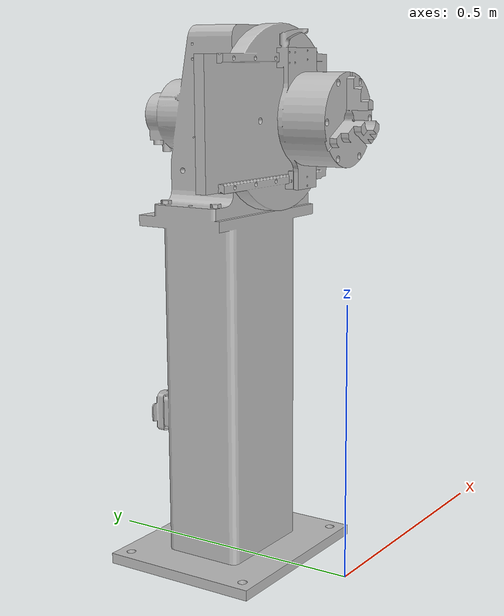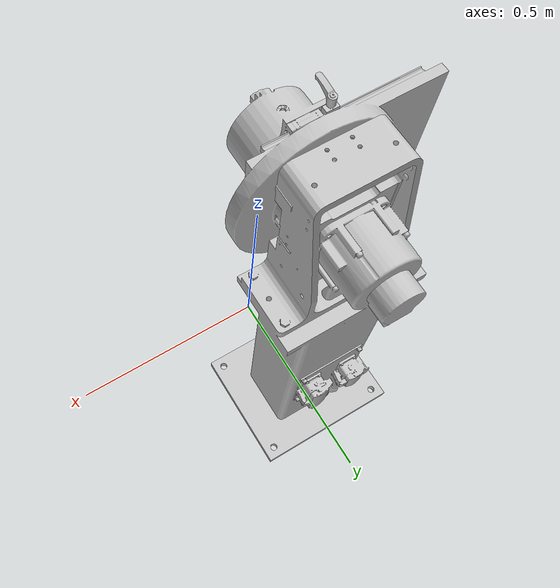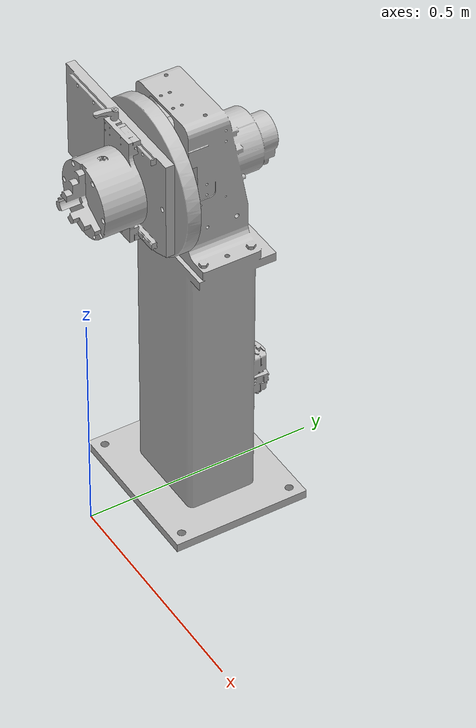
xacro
<?xml version="1.0"?>
<robot name="headstock" xmlns:xacro="http://www.ros.org/wiki/xacro">
  <!-- Constants for robot dimensions -->
  <xacro:property name="M_PI" value="3.1415926535897931"/>

  <link name="world" />

    <joint
    name="joint_base"
    type="revolute">
    <origin
      xyz="0 0 0"
      rpy="0 ${-M_PI/2} ${-M_PI/2}" />
    <parent
      link="world" />
    <child
      link="base_link" />
    <axis
      xyz="1 0 0" />
    <limit
      lower="0"
      upper="0"
      effort="0"
      velocity="0" />
  </joint>

  <link
    name="base_link">
    <inertial>
      <origin
        xyz="0.51244 -2.3404E-05 0.2498"
        rpy="0 0 0" />
      <mass
        value="78.401" />
      <inertia
        ixx="0.77135"
        ixy="-0.001359"
        ixz="-0.11123"
        iyy="8.3377"
        iyz="0.0002892"
        izz="8.4743" />
    </inertial>
    <visual>
      <origin
        xyz="0 0 0"
        rpy="0 0 0" />
      <geometry>
        <mesh
          filename="package://ma1400_sim/meshes/headstock/base_link.stl" />
      </geometry>
      <material
        name="">
        <color
          rgba="0.75294 0.75294 0.75294 1" />
      </material>
    </visual>
    <collision>
      <origin
        xyz="0 0 0"
        rpy="0 0 0" />
      <geometry>
        <mesh
          filename="package://ma1400_sim/meshes/headstock/base_link.stl" />
      </geometry>
    </collision>
  </link>

  <joint
    name="joint_revolute"
    type="revolute">
    <origin
      xyz="0.815 0 0.1108"
      rpy="0 1.5708 0" />
    <parent
      link="base_link" />
    <child
      link="revolute_link" />
    <axis
      xyz="1 0 0" />
    <limit
      lower="-10000"
      upper="10000"
      effort="10"
      velocity="${2*M_PI}" />
  </joint>

  <link
    name="revolute_link">
    <inertial>
      <origin
        xyz="-0.038458 -0.01197 1.626E-05"
        rpy="0 0 0" />
      <mass
        value="28.069" />
      <inertia
        ixx="0.33422"
        ixy="0.010472"
        ixz="-1.7812E-06"
        iyy="0.15979"
        iyz="4.2242E-05"
        izz="0.20701" />
    </inertial>
    <visual>
      <origin
        xyz="0 0 0"
        rpy="0 0 0" />
      <geometry>
        <mesh
          filename="package://ma1400_sim/meshes/headstock/revolute_link.stl" />
      </geometry>
      <material
        name="">
        <color
          rgba="0.75294 0.75294 0.75294 1" />
      </material>
    </visual>
    <collision>
      <origin
        xyz="0 0 0"
        rpy="0 0 0" />
      <geometry>
        <mesh
          filename="package://ma1400_sim/meshes/headstock/revolute_link.stl" />
      </geometry>
    </collision>
  </link>

  <joint
    name="joint_prismatic"
    type="prismatic">
    <origin
      xyz="0.1108 0 0"
      rpy="3.2816E-38 -3.1907E-15 -1.513E-16" />
    <parent
      link="revolute_link" />
    <child
      link="prismatic_link" />
    <axis
      xyz="0 1 0" />
    <limit
      lower="0"
      upper="0"
      effort="0"
      velocity="0" />
  </joint>

  <link
    name="prismatic_link">
    <inertial>
      <origin
        xyz="-0.044931 -0.00043316 0.00084535"
        rpy="0 0 0" />
      <mass
        value="13.994" />
      <inertia
        ixx="0.048967"
        ixy="-0.00025398"
        ixz="0.00051891"
        iyy="0.039037"
        iyz="0.00056149"
        izz="0.033771" />
    </inertial>
    <visual>
      <origin
        xyz="0 0 0"
        rpy="0 0 0" />
      <geometry>
        <mesh
          filename="package://ma1400_sim/meshes/headstock/prismatic_link.stl" />
      </geometry>
      <material
        name="">
        <color
          rgba="0.75294 0.75294 0.75294 1" />
      </material>
    </visual>
    <collision>
      <origin
        xyz="0 0 0"
        rpy="0 0 0" />
      <geometry>
        <mesh
          filename="package://ma1400_sim/meshes/headstock/prismatic_link.stl" />
      </geometry>
    </collision>
  </link>

</robot>
